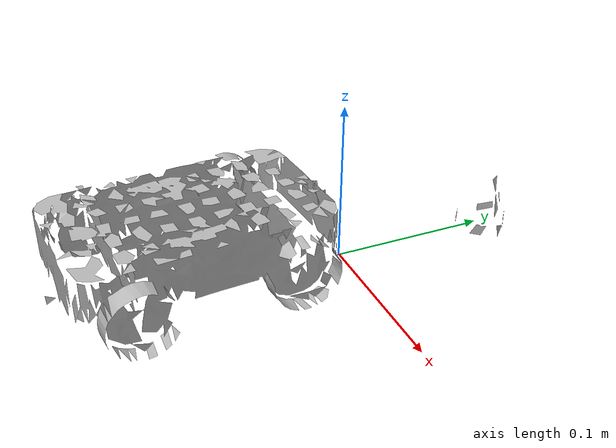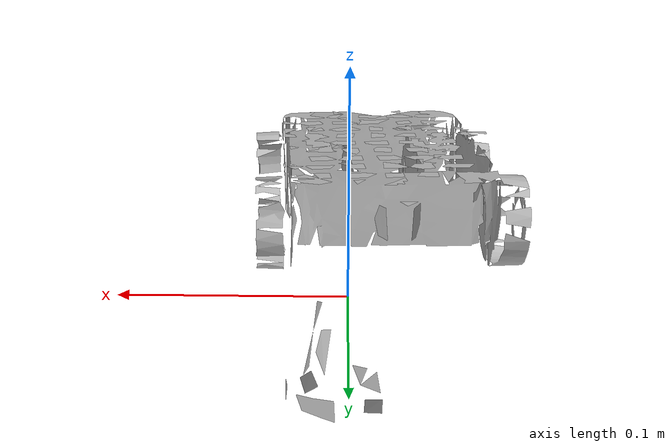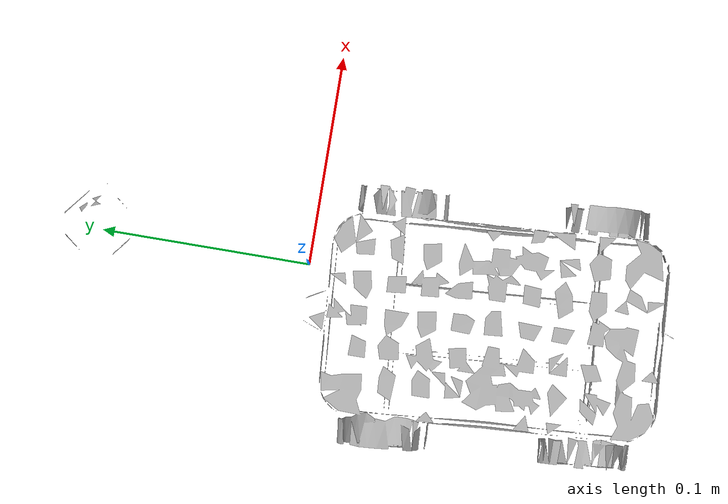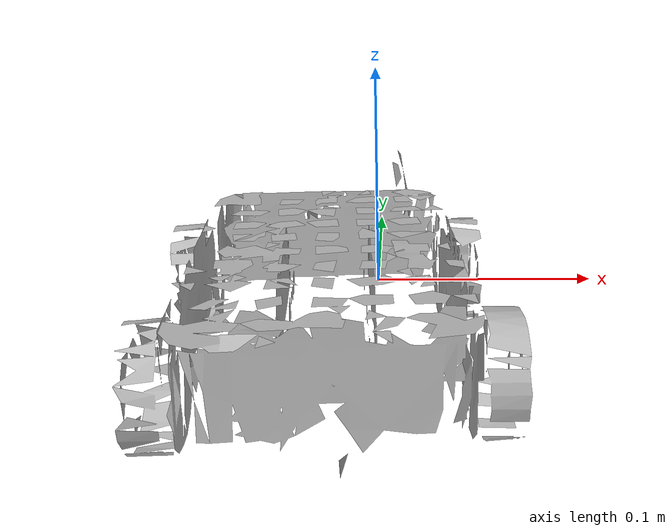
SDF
<?xml version="1.0" ?>
<sdf version="1.4">
  <model name='ycb_073-g_lego_duplo'>
    <link name='body'>
      <inertial>
        <mass>0.33426717846</mass>
        <pose>-0.0144007995916 -0.0834443863478 0.0311837606673 0 0 0</pose>
        <inertia>
          <ixx>0.00141979623029</ixx>
          <ixy>-3.85394793567e-05</ixy>
          <ixz>3.76741239489e-06</ixz>
          <iyy>0.000526359790741</iyy>
          <iyz>4.05316796141e-05</iyz>
          <izz>0.00183678456251</izz>
        </inertia>
      </inertial>
      <visual name='ycb_073-g_lego_duplo_visual'>
        <pose>0 0 0 0 0 0</pose>
        <geometry>
          <mesh>
            <uri>model://ycb_073-g_lego_duplo/meshes/textured.dae</uri>
          </mesh>
        </geometry>
      </visual>
      <collision name='ycb_073-g_lego_duplo_collision'>
        <pose>0 0 0 0 0 0</pose>
        <geometry>
          <mesh>
            <uri>model://ycb_073-g_lego_duplo/meshes/nontextured.stl</uri>
          </mesh>
        </geometry>
        <max_contacts>10</max_contacts>
      </collision>
    </link>
  </model>
</sdf>
